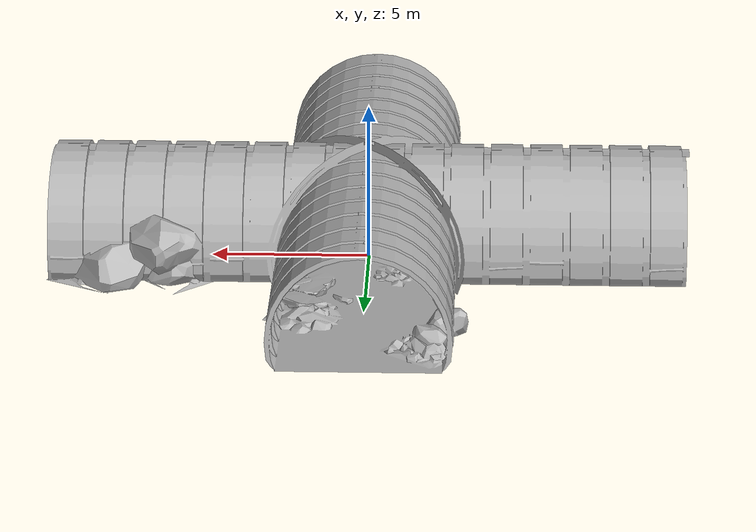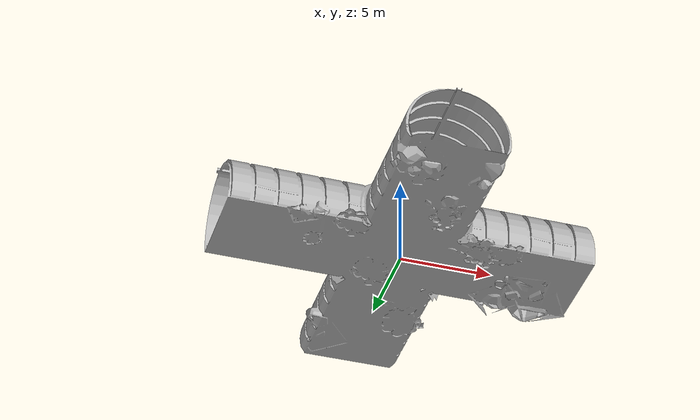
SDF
<?xml version="1.0" ?>
<sdf version="1.6">
  <model name="rough_tunnel_tile_4way_intersection">
    <static>true</static>
    <link name="link">
      <collision name="collision">
        <geometry>
          <mesh>
            <uri>model://rough_tunnel_tile_4way_intersection/meshes/4WayIntersection_Collider.DAE</uri>
          </mesh>
        </geometry>
      </collision>
      <collision name="collision_ground">
        <geometry>
          <box>
            <size>20 20 0.001</size>
          </box>
        </geometry>
      </collision>
      <visual name="visual">
        <geometry>
          <mesh>
            <uri>model://rough_tunnel_tile_4way_intersection/meshes/4WayIntersection.DAE</uri>
          </mesh>
        </geometry>
      </visual>
    </link>
  </model>
</sdf>
